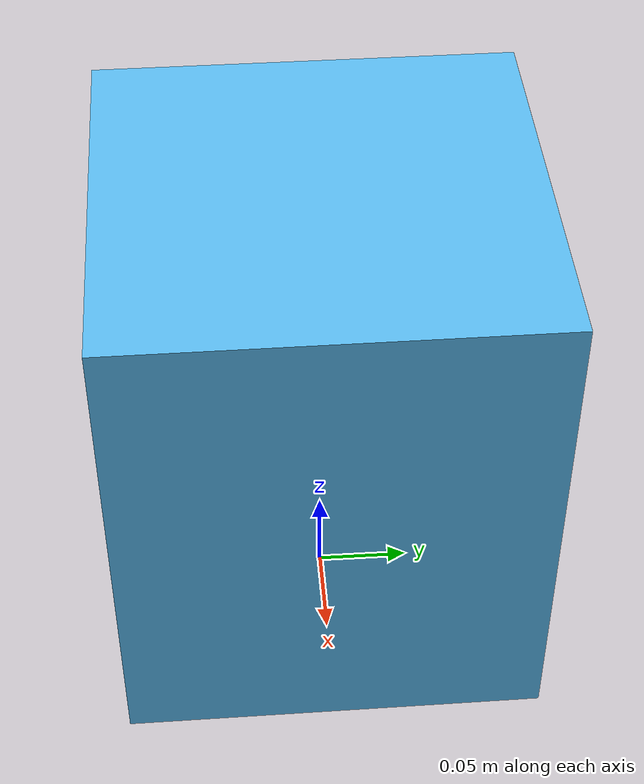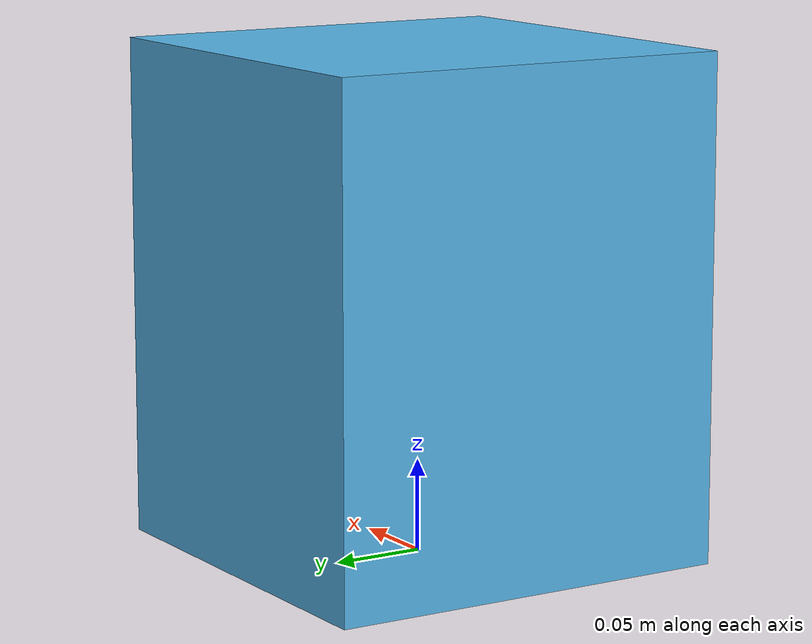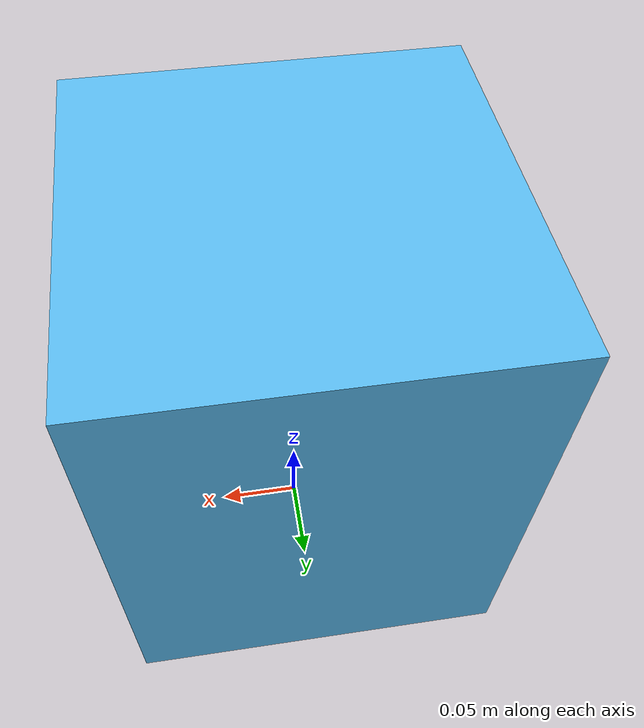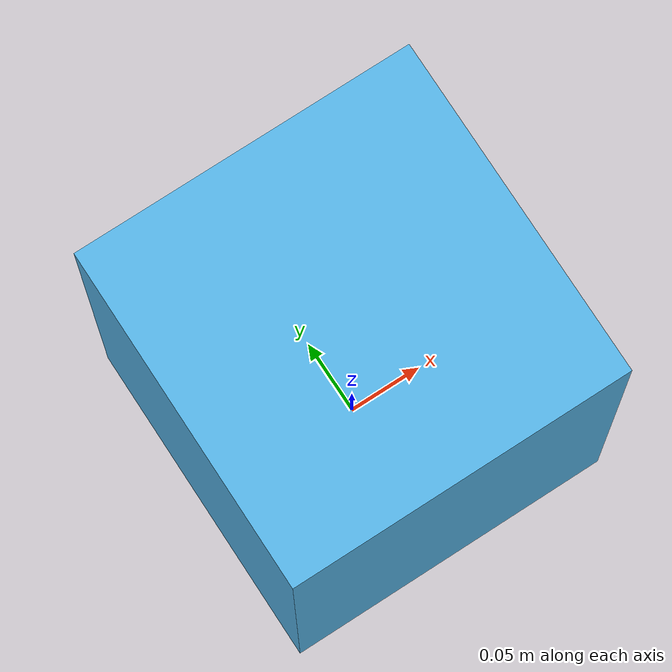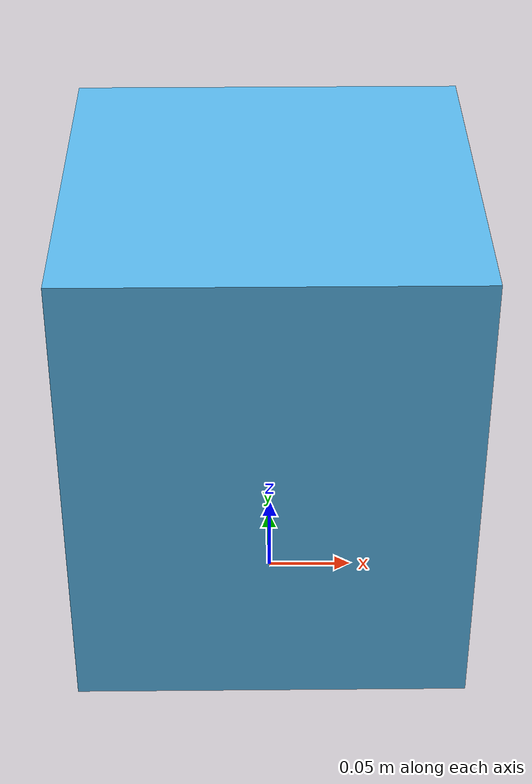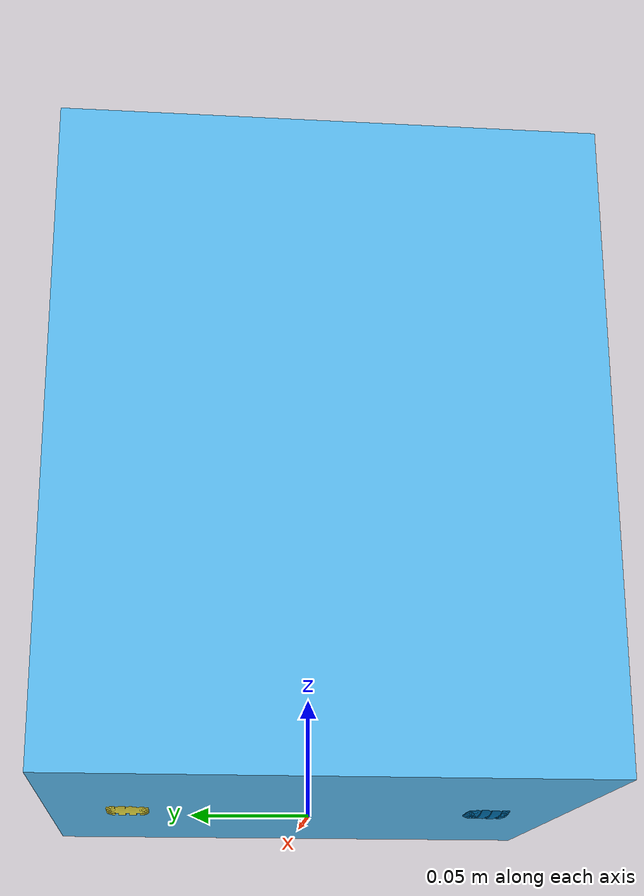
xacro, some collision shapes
<?xml version="1.0" ?>
<robot name="cube_petit" xmlns:xacro="http://ros.org/wiki/xacro">
  <link name="base_link"/>
  <joint name="body_joint" type="fixed">
    <parent link="base_link"/>
    <child link="body_link"/>
    <origin rpy="0 0 0" xyz="0.0 0 0"/>
  </joint>
  <link name="body_link">
    <visual>
      <origin rpy="0 0 0" xyz="0 0 0"/>
      <geometry>
    	  <mesh filename="package://cube_petit/meshes/cube_petit/cube_petit_body.obj"/>
      </geometry>
    </visual>
    <collision>
      <origin rpy="0 0 0" xyz="0 0 0.13725"/>
      <geometry>
        <box size="0.221 0.2225 0.2705"/>
      </geometry>
    </collision>
    <inertial>
      <origin rpy="0 0 0" xyz="0.01106693 0.00303088 0.15301422"/>
      <mass value="1.90110607"/>
      <inertia
        ixx="0.02115309"
        ixy="-0.00032189" iyy="0.02171733"
        ixz="0.00013005" iyz="0.00005398" izz="0.02025409"/>
    </inertial>
  </link>
  <gazebo reference="body_link">
    <selfCollide>false</selfCollide>
    <maxContacts>4</maxContacts>
    <mu1 value="0.0"/>
    <kp value="150000"/>
    <kd value="0"/>
  </gazebo>

  <joint name="laser_joint" type="fixed">
    <parent link="body_link"/>
    <child link="pacecat_link"/>
    <origin rpy="0 0 0" xyz="0.0 0 0.23975"/>
  </joint>
  <link name="pacecat_link">
    <inertial>
      <origin rpy="0 0 0" xyz="0.00000000 0.00000000 0.00208424"/>
      <mass value="0.11166745"/>
      <inertia
        ixx="0.004391"
        ixy="0.000000" iyy="0.004391"
        ixz="0.000000" iyz="0.000000" izz="0.004277"/>
    </inertial>
    <visual>
      <origin rpy="0 0 0" xyz="0 0 0"/>
      <geometry>
        <cylinder length="0.0315" radius="0.025"/>
      </geometry>
      <material name="red"/>
    </visual>
    <collision>
      <origin rpy="0 0 0" xyz="0 0 0"/>
      <geometry>
        <cylinder length="0.0315" radius="0.025"/>
      </geometry>
    </collision>
  </link>
  <gazebo reference="pacecat_link">
    <mu1 value="0.5"/>
    <kp value="50000"/>
    <kd value="0"/>
    <sensor type="ray" name="pacecat">
      <pose>0 0 0 0 0 0</pose>
      <visualize>false</visualize>
      <update_rate>10</update_rate>
      <ray>
        <scan>
          <horizontal>
            <samples>400</samples>
            <resolution>1</resolution>
            <min_angle>${radians(-180)}</min_angle>
            <max_angle>${radians( 180)}</max_angle>
          </horizontal>
        </scan>
        <range>
          <min>0.16</min>
          <max>20.0</max>
          <resolution>0.01</resolution>
        </range>
        <noise>
          <type>gaussian</type>
          <mean>0.0</mean>
          <stddev>0.01</stddev>
        </noise>
      </ray>
      <plugin name="gazebo_ros_lidar_controller" filename="libgazebo_ros_laser.so">
        <topicName>/pacecat_link/scan</topicName>
        <frameName>pacecat_link</frameName>
      </plugin>
    </sensor>
  </gazebo>

  <joint name="left_wheel_joint" type="continuous">
    <origin rpy="0 0 0" xyz="-0.002 0.077 0.033"/>
    <parent link="body_link"/>
    <child link="left_wheel_link"/>
    <axis xyz="0 1 0"/>
  </joint>
  <transmission name="left_wheel_trans" type="SimpleTransmission">
    <type>transmission_interface/SimpleTransmission</type>
    <actuator name="left_wheel_motor">
      <mechanicalReduction>1</mechanicalReduction>
    </actuator>
    <joint name="left_wheel_joint">
      <hardwareInterface>hardware_interface/VelocityJointInterface</hardwareInterface>
    </joint>
  </transmission>
  <link name="left_wheel_link">
    <inertial>
      <origin rpy="0 0 0" xyz="-0.00000147 0.00093592 -0.00000239"/>
      <mass value="0.2986774"/>
      <inertia
        ixx="0.0001147"
        ixy="0.00000000" iyy="0.0002130"
        ixz="0.00000000" iyz="0.0000001" izz="0.0001148"/>
    </inertial>
    <visual>
    <origin rpy="-1.57079632679 0 0" xyz="0 0 0"/>
      <geometry>
	      <mesh filename="package://cube_petit/meshes/cube_petit/cube_petit_wheel.obj"/>
      </geometry>
    </visual>
    <collision>
      <origin rpy="1.57079632679 0 0" xyz="0 0 0"/>
      <geometry>
        <cylinder length="0.002" radius="0.033"/>
      </geometry>
    </collision>
  </link>
  <gazebo reference="left_wheel_link">
    <selfCollide>false</selfCollide>
    <maxContacts>2</maxContacts>
    <minDepth>0</minDepth>
    <mu1 value="2.5"/>
    <kp value="50000"/>
    <kd value="0"/>
  </gazebo>

  <joint name="right_wheel_joint" type="continuous">
    <origin rpy="0 0 0" xyz="-0.002 -0.077 0.033"/>
    <parent link="body_link"/>
    <child link="right_wheel_link"/>
    <axis xyz="0 1 0"/>
  </joint>
  <!-- only for gazebo -->
  <transmission name="right_wheel_trans" type="SimpleTransmission">
    <type>transmission_interface/SimpleTransmission</type>
    <actuator name="right_wheel_motor">
      <mechanicalReduction>1</mechanicalReduction>
    </actuator>
    <joint name="right_wheel_joint">
      <hardwareInterface>hardware_interface/VelocityJointInterface</hardwareInterface>
    </joint>
  </transmission>
  <link name="right_wheel_link">
    <inertial>
      <origin rpy="0 0 0" xyz="-0.00000147 0.00093592 -0.00000239"/>
      <mass value="0.2986774"/>
      <inertia
        ixx="0.0001147"
        ixy="0.00000000" iyy="0.0002130"
        ixz="0.00000000" iyz="0.0000001" izz="0.0001148"/>
    </inertial>
    <visual>
      <origin rpy="1.57079632679 0 0" xyz="0 0 0"/>
      <geometry>
        <mesh filename="package://cube_petit/meshes/cube_petit/cube_petit_wheel.obj"/>
      </geometry>
    </visual>
    <collision>
      <origin rpy="1.57079632679 0 0" xyz="0 0 0"/>
      <geometry>
        <cylinder length="0.002" radius="0.033"/>
      </geometry>
    </collision>
  </link>
  <gazebo reference="right_wheel_link">
    <selfCollide>false</selfCollide>
    <maxContacts>2</maxContacts>
    <minDepth>0</minDepth>
    <mu1 value="2.5"/>
    <kp value="50000"/>
    <kd value="0"/>
  </gazebo>
  <!-- load gazebo plugin (hardware interface) -->
  <gazebo>
    <plugin name="gazebo_ros_control" filename="libgazebo_ros_control.so">
      <robotNamespace>/cube_petit</robotNamespace>
      <legacyModeNS>true</legacyModeNS>
    </plugin>
  </gazebo>
</robot>
